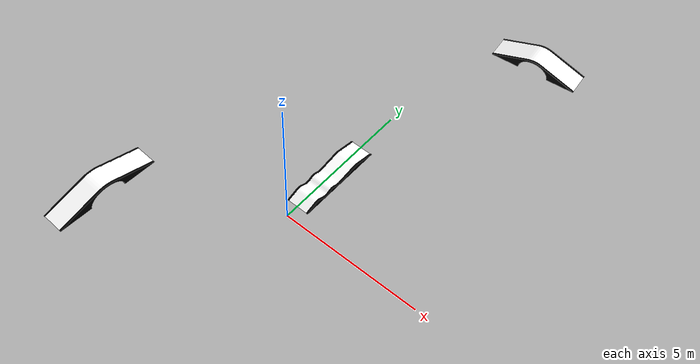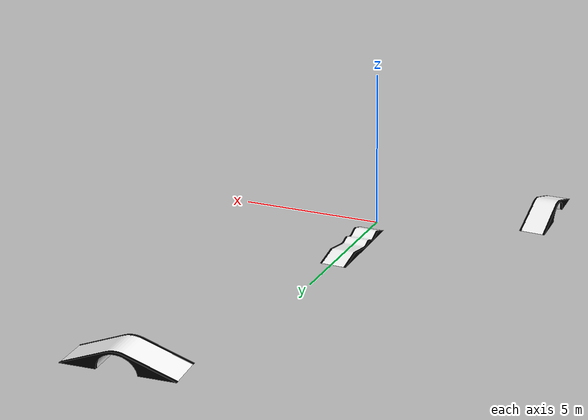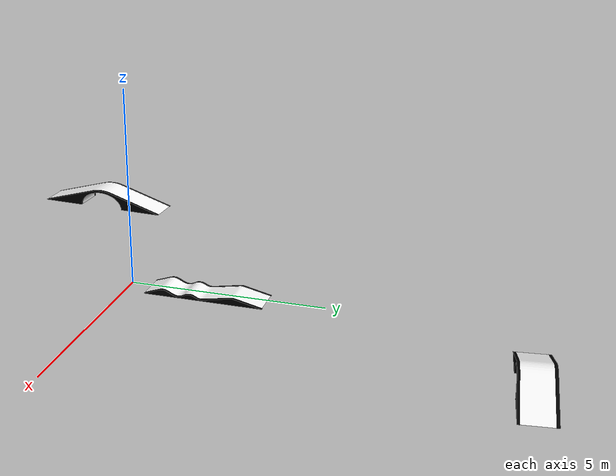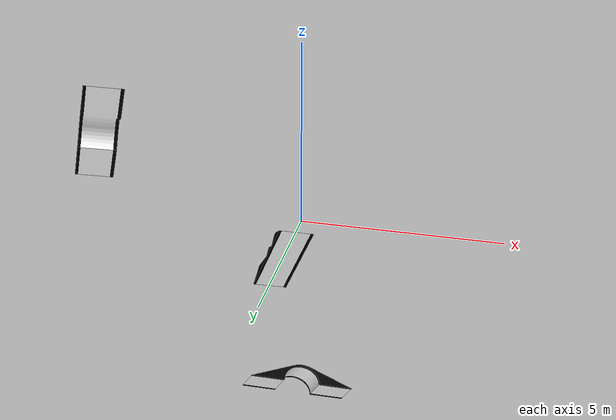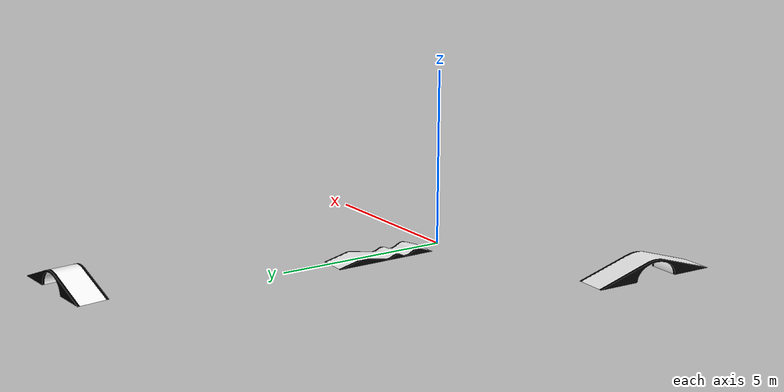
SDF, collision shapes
<?xml version="1.0" ?>
<sdf version="1.6">
  <model name='Raceway_1'>
    <pose>0 0 0 0 0 0</pose>
    <self_collide>false</self_collide>
    <static>true</static>
    <link name='Raceway_1/Base'>
      <visual name='Raceway_1/TrackVisual'>
        <pose>0 0 -.045 0 0 0</pose>
        <geometry>
          <mesh>
            <scale>0.35 0.35 0.35</scale>
            <uri>model://Raceway_1/meshes/track2.dae</uri>
          </mesh>
        </geometry>

      </visual>
      <collision name='Raceway_1/RumbleCollision'>
        <pose>-0.007 2 -0.05 0 0 0</pose>
        <geometry>
          <mesh>
            <scale>0.35 .3605 0.35</scale>
            <uri>model://Raceway_1/meshes/rumble_new.dae</uri>
          </mesh>
        </geometry>
      </collision>
      <visual name='Raceway_1/RumbleVisual'>
        <pose>-0.007 2 -0.05 0 0 0</pose>
        <geometry>
          <mesh>
            <scale>0.35 0.3605 0.35</scale>
            <uri>model://Raceway_1/meshes/rumble_new.dae</uri>
          </mesh>
        </geometry>

      </visual>
      <collision name='Raceway_1/BridgeCollision'>
        <pose>2.2 10.1 -0.05 0 0 -1.447</pose>
        <geometry>
          <mesh>
            <scale>0.35 0.3605 0.31</scale>
            <uri>model://Raceway_1/meshes/Bridge_new.dae</uri>
          </mesh>
        </geometry>
      </collision>
      <visual name='Raceway_1/BridgeVisual'>
        <pose>2.2 10.1 -0.05 0 0 -1.447</pose>
        <geometry>
          <mesh>
            <scale>0.35 0.3605 0.31</scale>
            <uri>model://Raceway_1/meshes/Bridge_new.dae</uri>
          </mesh>
        </geometry>
      </visual>
      <visual name='Raceway_1/BridgeExtVisual1'>
        <pose>2.2 9.2 -0.05 0 0 -1.447</pose>
        <geometry>
          <mesh>
            <scale>0.35 0.3605 0.31</scale>
            <uri>model://Raceway_1/meshes/bridge_extension.dae</uri>
          </mesh>
        </geometry>
      </visual>
      <visual name='Raceway_1/BridgeExtVisual2'>
        <pose>2.2 10.95 -0.05 0 0 -1.447</pose>
        <geometry>
          <mesh>
            <scale>0.35 0.3605 0.31</scale>
            <uri>model://Raceway_1/meshes/bridge_extension.dae</uri>
          </mesh>
        </geometry>
      </visual>
      <visual name='Raceway_1/BridgeVisual_demo'>
        <pose>2.25 9.67 -0.05 0 0 -1.447</pose>
        <geometry>
          <mesh>
            <scale>0.01 0.3605 0.31</scale>
            <uri>model://Raceway_1/meshes/bridge_side.dae</uri>
          </mesh>
        </geometry>
      </visual>
       <visual name='Raceway_1/Tunnel1'>
        <pose>-6.27 7.67 -0.05 0 0 0</pose>
        <geometry>
          <mesh>
            <scale>0.73 0.2 0.5</scale>
            <uri>model://Raceway_1/meshes/tunnel.dae</uri>
          </mesh>
        </geometry>
      </visual>
      <visual name='Raceway_1/BridgeVisual_demo1'>
        <pose>2.15 10.55 -0.05 0 0 -1.447</pose>
        <geometry>
          <mesh>
            <scale>0.01 0.3605 0.31</scale>
            <uri>model://Raceway_1/meshes/bridge_side.dae</uri>
          </mesh>
        </geometry>
      </visual>
      <visual name='Raceway_1/BridgeVisual_demo2'>
        <pose>-5.53 -3 -0.045 0 0 -0.063</pose>
        <geometry>
          <mesh>
            <scale>0.01 0.3 0.31</scale>
            <uri>model://Raceway_1/meshes/bridge_side.dae</uri>
          </mesh>
        </geometry>
      </visual>

      <visual name='Raceway_1/BridgeVisual_demo3'>
        <pose>-4.67 -3.05 -0.045 0 0 -0.063</pose>
        <geometry>
          <mesh>
            <scale>0.01 0.3 0.31</scale>
            <uri>model://Raceway_1/meshes/bridge_side.dae</uri>
          </mesh>
        </geometry>
      </visual>

      <collision name='Raceway_1/BridgeCollision2'>
        <pose>-5.1 -3.05 -0.045 0 0 -0.063</pose>
        <geometry>
          <mesh>
            <scale>0.35 0.44 0.3</scale>
            <uri>model://Raceway_1/meshes/Bridge_new.dae</uri>
          </mesh>
        </geometry>
      </collision>
      <visual name='Raceway_1/BridgeVisual2'>
        <pose>-5.1 -3.05 -0.045 0 0 -0.063</pose>
        <geometry>
          <mesh>
            <scale>0.35 0.4 0.3</scale>
            <uri>model://Raceway_1/meshes/Bridge_new.dae</uri>
          </mesh>
        </geometry>
      </visual>
      <visual name='Raceway_1/BridgeExtVisual3'>
        <pose>-4.25 -3.15 -0.045 0 0 -0.063</pose>
        <geometry>
          <mesh>
            <scale>0.35 0.3 0.31</scale>
            <uri>model://Raceway_1/meshes/bridge_extension.dae</uri>
          </mesh>
        </geometry>
      </visual>
      <visual name='Raceway_1/BridgeExtVisual4'>
        <pose>-6 -3 -0.045 0 0 -0.063</pose>
        <geometry>
          <mesh>
            <scale>0.35 0.3 0.31</scale>
            <uri>model://Raceway_1/meshes/bridge_extension.dae</uri>
          </mesh>
        </geometry>
      </visual>
      <visual name='Raceway_1/Tunnel2'>
        <pose>-4.2 -11.8 -.02 0 0 1.384</pose>
        <geometry>
          <mesh>
            <scale>0.73 0.2 0.5</scale>
            <uri>model://Raceway_1/meshes/tunnel.dae</uri>
          </mesh>
        </geometry>
      </visual>

    </link>
  </model>
</sdf>
